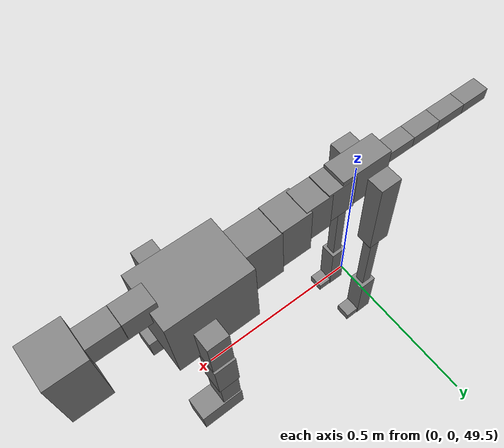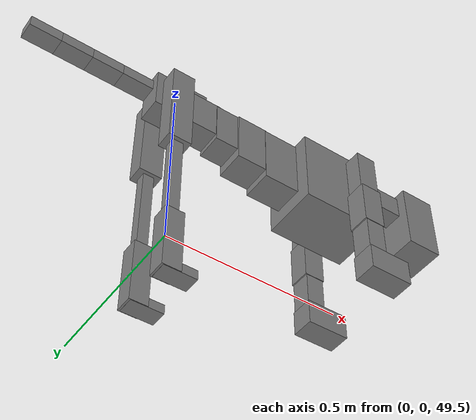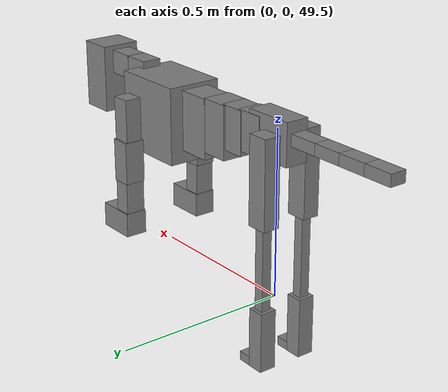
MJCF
<mujoco model="dog">

    <default>
        <joint armature="0.02" stiffness="1" damping="0.2" limited="true"/>
        <geom condim="3" friction="1 0.05 0.05" margin="0.01"/>
        <motor ctrllimited="true" ctrlrange="-1.0 1.0" forcelimited="true" gear="50"/>
    </default>

    <compiler inertiafromgeom="true" angle="radian"/>

    <option timestep="0.016" iterations="50" tolerance="1e-10" solver="Newton" jacobian="dense" cone="pyramidal"/>

    <size nconmax="20000" njmax="60000" nstack="5000000"/>
    <visual>
        <map force="0.1" zfar="30"/>
        <rgba haze="0.15 0.25 0.35 1"/>
        <quality shadowsize="2048"/>
        <global offwidth="800" offheight="800"/>
    </visual>

    <asset>
        <texture type="skybox" builtin="gradient" rgb1="0.3 0.5 0.7" rgb2="0 0 0" width="512" height="512"/>
        <texture name="texplane" type="2d" builtin="checker" rgb1=".2 .3 .4" rgb2=".1 0.15 0.2" width="512" height="512"
                 mark="cross" markrgb=".8 .8 .8"/>
        <texture name="texgeom" type="cube" builtin="flat" mark="cross" width="127" height="1278" rgb1="0.8 0.6 0.4"
                 rgb2="0.8 0.6 0.4" markrgb="1 1 1" random="0.01"/>

        <material name="matplane" reflectance="0.3" texture="texplane" texrepeat="1 1" texuniform="true"/>
        <material name="matgeom" texture="texgeom" texuniform="true" rgba="0.8 0.6 .4 1"/>
    </asset>

    <worldbody>
        <geom name="floor" pos="0 0 0" size="0 0 .25" type="plane" material="matplane" condim="3"/>

        <light directional="false" diffuse=".2 .2 .2" specular="0 0 0" pos="0 0 5" dir="0 0 -1" castshadow="false"/>
        <light mode="targetbodycom" target="torso" directional="false" diffuse=".8 .8 .8" specular="0.3 0.3 0.3"
               pos="0 0 4.0" dir="0 0 -1"/>

        <body name="root" pos="0 0 50">
            <freejoint name="root_1"/>
            <geom type="box" pos="0 0 -0.02" size="0.0774  0.0358  0.063" density="2030"/>

            <body name="spine1" pos="0.054 0 0">
                <joint name="spine1_y" axis="0 1 0" range="0 0.7" limited="true"/>
                <geom type="box" pos="0.02375 0 -0.03" size="0.04375  0.0375  0.05985" density="2030"/>

                <body name="spine2" pos="0.0612 0 0">
                    <joint name="spine2_y" axis="0 1 0" range="-0.15 0.15" limited="true"/>
                    <geom type="box" pos="0.03555  0  -0.04" size="0.04055  0.039  0.06615" density="2030"/>

                    <body name="spine3" pos="0.0730 0 0">
                        <joint name="spine3_y" axis="0 1 0" range="-0.15 0.15" limited="true"/>
                        <geom type="box" pos="0.03555  0  -0.057" size="0.04555  0.0445  0.081" density="2030"/>

                        <body name="spine4" pos="0.0780 0 0">
                            <joint name="spine4_y" axis="0 1 0" range="-0.15 0.15" limited="true"/>
                            <geom type="box" pos="0.05265  0  -0.07" size="0.05265  0.045  0.09135" density="2030"/>

                            <body name="torso" pos="0.1082 0 0">
                                <joint name="torso_y" axis="0 1 0" range="-0.15 0.15" limited="true"/>
                                <geom type="box" pos="0.11925  0  -0.085" size="0.11925  0.085  0.11745"
                                      density="2030"/>

                                <body name="neck1" pos="0.2160  0   0.0180">
                                    <joint name="neck1_y" axis="0 1 0" range="-1.2  -1" limited="true"/>
                                    <geom type="box" pos="0.0423  0  0" size="0.0423  0.03  0.036" density="2325"/>

                                    <body name="neck2" pos="0.0853  0  0">
                                        <joint name="neck2_y" axis="0 1 0" range="0.1  0" limited="true"/>
                                        <geom type="box" pos="0.0423  0  0" size="0.0423  0.03  0.036" density="2325"/>

                                        <body name="head" pos="0.0853  0  0">
                                            <joint name="head_y" axis="0 1 0" range="-0.3  -0.2" limited="true"/>
                                            <geom type="box" pos="0.0531  0  -0.055" size="0.0531  0.06  0.1044"
                                                  density="4030"/>

                                        </body>
                                    </body>
                                </body>

                                <body name="front_shoulder" pos="0.156  0   -0.0480">
                                    <joint name="front_shoulder_y" axis="0 1 0" range="-1 1.5" limited="true"/>
                                    <geom type="box" pos="0 0.13 -0.0525" size="0.0297  0.0254  0.0791" density="1158"/>
                                    <geom type="box" pos="0 -0.13 -0.0525" size="0.0297  0.0254  0.0791"
                                          density="1158"/>

                                    <body name="front_elbow" pos="0  0  -0.1049">
                                        <joint name="front_elbow_y" axis="0 1 0" range="-2 0" limited="true"/>
                                        <geom type="box" pos="0 0.13 -0.0651" size="0.0307  0.0314  0.0651"
                                              density="1081"/>
                                        <geom type="box" pos="0 -0.13 -0.0651" size="0.0307  0.0314  0.0651"
                                              density="1081"/>

                                        <body name="front_wrist" pos="0  0  -0.1302">
                                            <joint name="front_wrist_y" axis="0 1 0" range="-0.2 0" limited="true"/>
                                            <geom type="box" pos="0 0.13 -0.0558" size="0.0271  0.0301  0.0689"
                                                  density="1664"/>
                                            <geom type="box" pos="0 -0.13 -0.0558" size="0.0271  0.0301  0.0689"
                                                  density="1664"/>

                                            <body name="front_finger_end" pos="0  0  -0.1116">
                                                <joint name="front_finger_y" axis="0 1 0" range="-0.4 1"
                                                       limited="true"/>
                                                <geom type="box" pos="0.0336  0.13  -0.0223"
                                                      size="0.0617  0.0336  0.0373" density="1515"/>
                                                <geom type="box" pos="0.0336  -0.13  -0.0223"
                                                      size="0.0617  0.0336  0.0373" density="1515"/>

                                            </body>

                                        </body>
                                    </body>
                                </body>

                            </body>
                        </body>
                    </body>
                </body>
            </body>

            <body name="back_hip" pos="-0.03 0 -0.018">
                <joint name="back_hip_y" axis="0 1 0" range="-1.5 0.3" limited="true"/>
                <geom type="box" pos="0 0.07 -0.1087" size="0.0325  0.0255  0.1315" density="1154"/>
                <geom type="box" pos="0 -0.07 -0.1087" size="0.0325  0.0255  0.1315" density="1154"/>

                <body name="back_knee" pos="0  0  -0.2173">
                    <joint name="back_knee_y" axis="0 1 0" range="0 2.8" limited="true"/>
                    <geom type="box" pos="0 0.07 -0.1412" size="0.0153  0.0151  0.1568" density="1227"/>
                    <geom type="box" pos="0 -0.07 -0.1412" size="0.0153  0.0151  0.1568" density="1227"/>

                    <body name="back_ankle" pos="0  0  -0.2825">
                        <joint name="back_ankle_y" axis="0 1 0" range="-2.2 0" limited="true"/>
                        <geom type="box" pos="0 0.07 -0.0798" size="0.0256  0.0256  0.0910" density="1284"/>
                        <geom type="box" pos="0 -0.07 -0.0798" size="0.0256  0.0256  0.0910" density="1284"/>

                        <body name="back_toe_end" pos="0  0  -0.1596">
                            <joint name="back_toe_y" axis="0 1 0" range="-0.4 1" limited="true"/>
                            <geom type="box" pos="0.0241  0.07  0.0017" size="0.0442  0.0241  0.0133" density="1515"/>
                            <geom type="box" pos="0.0241  -0.07  0.0017" size="0.0442  0.0241  0.0133" density="1515"/>

                        </body>
                    </body>
                </body>
            </body>

            <body name="tail1" pos="-0.074 0 -0.006">
                <joint name="tail1_y" axis="0 1 0" range="-0.2 0.2" limited="true"/>
                <geom type="box" pos="-0.0536  0  0" size="0.045  0.025  0.0175" density="1587"/>

                <body name="tail2" pos="-0.09 0 0">
                    <joint name="tail2_y" axis="0 1 0" range="-0.2 0.2" limited="true"/>
                    <geom type="box" pos="-0.0536  0  0" size="0.045  0.025  0.0175" density="1587"/>

                    <body name="tail3" pos="-0.09 0 0">
                        <joint name="tail3_y" axis="0 1 0" range="-0.2 0.2" limited="true"/>
                        <geom type="box" pos="-0.0536  0  0" size="0.045  0.025  0.0175" density="1587"/>

                        <body name="tail4" pos="-0.09 0 0">
                            <joint name="tail4_y" axis="0 1 0" range="-0.2 0.2" limited="true"/>
                            <geom type="box" pos="-0.0536  0  0" size="0.045  0.025  0.0175" density="1587"/>

                        </body>
                    </body>
                </body>
            </body>
        </body>
    </worldbody>

    <actuator>
        <motor joint="spine1_y" forcerange="-150 150     "/>
        <motor joint="spine2_y" forcerange="-150 150     "/>
        <motor joint="spine3_y" forcerange="-150 150     "/>
        <motor joint="spine4_y" forcerange="-150 150     "/>
        <motor joint="torso_y" forcerange="-150 150     "/>
        <motor joint="neck1_y" forcerange="-100 100       "/>
        <motor joint="neck2_y" forcerange="-100 100       "/>
        <motor joint="head_y" forcerange="-150 150       "/>
        <motor joint="front_shoulder_y" forcerange="-147.59 121.80"/>
        <motor joint="front_elbow_y" forcerange="-191.27 136.73"/>
        <motor joint="front_wrist_y" forcerange="-102.92 137.94"/>
        <motor joint="front_finger_y" forcerange="-52.31 87.11"/>
        <motor joint="back_hip_y" forcerange="-329.63 209.90"/>
        <motor joint="back_knee_y" forcerange="-212.51 207.02"/>
        <motor joint="back_angle_y" forcerange="-74.61 234.57"/>
        <motor joint="back_toe_y" forcerange="-34.79 78.15"/>
        <motor joint="tail1_y" forcerange="-50 50     "/>
        <motor joint="tail2_y" forcerange="-50 50     "/>
        <motor joint="tail3_y" forcerange="-50 50     "/>
        <motor joint="tail4_y" forcerange="-50 50     "/>
    </actuator>
</mujoco>
